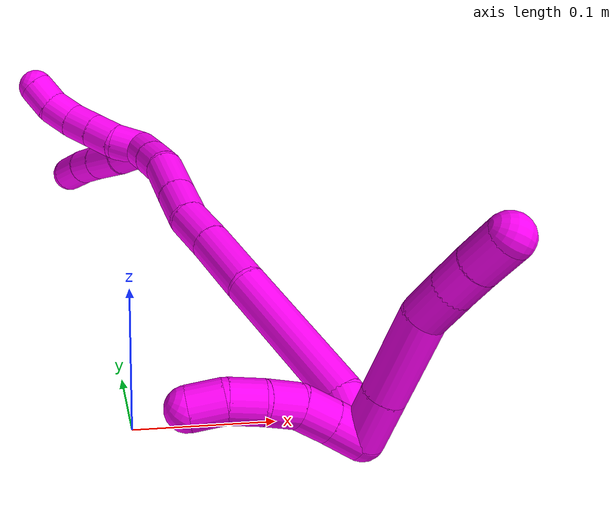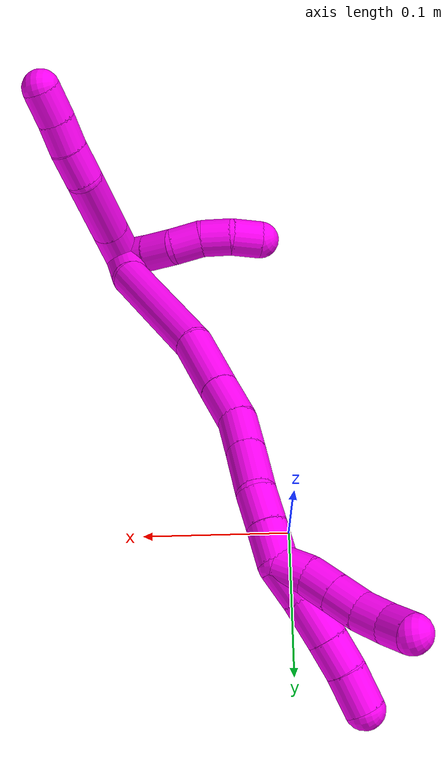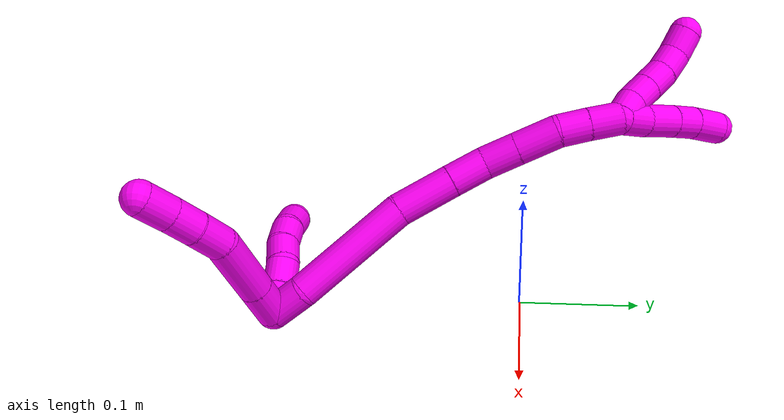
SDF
<sdf version="1.7">
 <world name="default">
  <model name="10">
   <static>0</static>
   <link name="10">
    <collision name="collision-cylinder-e_1_2_8">
     <pose>0.014125 0.005081 0.002437 -1.12356 1.19122 -0.80641</pose>
     <geometry><cylinder><radius>0.0125</radius><length>0.030415</length></cylinder></geometry>
     <surface>
      <friction><ode><mu>1.16</mu><mu2>1.16</mu2><slip1>0</slip1><slip2>0</slip2></ode></friction>
      <contact><ode><kp>1e+06</kp><kd>1</kd><max_vel>0</max_vel><min_depth>0.001</min_depth></ode></contact>
     </surface>
    </collision>
    <visual name="visual-cylinder-e_1_2_8">
     <pose>0.014125 0.005081 0.002437 -1.12356 1.19122 -0.80641</pose>
     <geometry><cylinder><radius>0.0125</radius><length>0.030415</length></cylinder></geometry>
     <material><ambient>1 0 0.964706 1</ambient></material>
    </visual>
    <collision name="collision-cylinder-e_2_8_9">
     <pose>0.051787 0.018562 0.008911 -1.12278 1.19375 -0.807744</pose>
     <geometry><cylinder><radius>0.0125</radius><length>0.05063</length></cylinder></geometry>
     <surface>
      <friction><ode><mu>1.16</mu><mu2>1.16</mu2><slip1>0</slip1><slip2>0</slip2></ode></friction>
      <contact><ode><kp>1e+06</kp><kd>1</kd><max_vel>0</max_vel><min_depth>0.001</min_depth></ode></contact>
     </surface>
    </collision>
    <visual name="visual-cylinder-e_2_8_9">
     <pose>0.051787 0.018562 0.008911 -1.12278 1.19375 -0.807744</pose>
     <geometry><cylinder><radius>0.0125</radius><length>0.05063</length></cylinder></geometry>
     <material><ambient>1 0 0.964706 1</ambient></material>
    </visual>
    <collision name="collision-cylinder-e_3_9_10">
     <pose>0.087415 0.027603 0.012897 -1.65095 1.5177 -1.59791</pose>
     <geometry><cylinder><radius>0.0125</radius><length>0.024218</length></cylinder></geometry>
     <surface>
      <friction><ode><mu>1.16</mu><mu2>1.16</mu2><slip1>0</slip1><slip2>0</slip2></ode></friction>
      <contact><ode><kp>1e+06</kp><kd>1</kd><max_vel>0</max_vel><min_depth>0.001</min_depth></ode></contact>
     </surface>
    </collision>
    <visual name="visual-cylinder-e_3_9_10">
     <pose>0.087415 0.027603 0.012897 -1.65095 1.5177 -1.59791</pose>
     <geometry><cylinder><radius>0.0125</radius><length>0.024218</length></cylinder></geometry>
     <material><ambient>1 0 0.964706 1</ambient></material>
    </visual>
    <collision name="collision-cylinder-e_4_10_11">
     <pose>0.110107 0.027862 0.013229 0.782269 1.51979 0.746948</pose>
     <geometry><cylinder><radius>0.0125</radius><length>0.021227</length></cylinder></geometry>
     <surface>
      <friction><ode><mu>1.16</mu><mu2>1.16</mu2><slip1>0</slip1><slip2>0</slip2></ode></friction>
      <contact><ode><kp>1e+06</kp><kd>1</kd><max_vel>0</max_vel><min_depth>0.001</min_depth></ode></contact>
     </surface>
    </collision>
    <visual name="visual-cylinder-e_4_10_11">
     <pose>0.110107 0.027862 0.013229 0.782269 1.51979 0.746948</pose>
     <geometry><cylinder><radius>0.0125</radius><length>0.021227</length></cylinder></geometry>
     <material><ambient>1 0 0.964706 1</ambient></material>
    </visual>
    <collision name="collision-cylinder-e_5_11_6">
     <pose>0.132459 0.027274 0.013513 2.02346 1.55127 2.00582</pose>
     <geometry><cylinder><radius>0.0125</radius><length>0.023511</length></cylinder></geometry>
     <surface>
      <friction><ode><mu>1.16</mu><mu2>1.16</mu2><slip1>0</slip1><slip2>0</slip2></ode></friction>
      <contact><ode><kp>1e+06</kp><kd>1</kd><max_vel>0</max_vel><min_depth>0.001</min_depth></ode></contact>
     </surface>
    </collision>
    <visual name="visual-cylinder-e_5_11_6">
     <pose>0.132459 0.027274 0.013513 2.02346 1.55127 2.00582</pose>
     <geometry><cylinder><radius>0.0125</radius><length>0.023511</length></cylinder></geometry>
     <material><ambient>1 0 0.964706 1</ambient></material>
    </visual>
    <collision name="collision-cylinder-e_1_2_12">
     <pose>7.2e-05 0.001019 0.009948 -0.102072 0.007209 -0.000368</pose>
     <geometry><cylinder><radius>0.0125</radius><length>0.02</length></cylinder></geometry>
     <surface>
      <friction><ode><mu>1.16</mu><mu2>1.16</mu2><slip1>0</slip1><slip2>0</slip2></ode></friction>
      <contact><ode><kp>1e+06</kp><kd>1</kd><max_vel>0</max_vel><min_depth>0.001</min_depth></ode></contact>
     </surface>
    </collision>
    <visual name="visual-cylinder-e_1_2_12">
     <pose>7.2e-05 0.001019 0.009948 -0.102072 0.007209 -0.000368</pose>
     <geometry><cylinder><radius>0.0125</radius><length>0.02</length></cylinder></geometry>
     <material><ambient>1 0 0.964706 1</ambient></material>
    </visual>
    <collision name="collision-cylinder-e_2_12_13">
     <pose>0.000368 0.002449 0.029884 -0.041167 0.022398 -0.000461</pose>
     <geometry><cylinder><radius>0.0125</radius><length>0.02</length></cylinder></geometry>
     <surface>
      <friction><ode><mu>1.16</mu><mu2>1.16</mu2><slip1>0</slip1><slip2>0</slip2></ode></friction>
      <contact><ode><kp>1e+06</kp><kd>1</kd><max_vel>0</max_vel><min_depth>0.001</min_depth></ode></contact>
     </surface>
    </collision>
    <visual name="visual-cylinder-e_2_12_13">
     <pose>0.000368 0.002449 0.029884 -0.041167 0.022398 -0.000461</pose>
     <geometry><cylinder><radius>0.0125</radius><length>0.02</length></cylinder></geometry>
     <material><ambient>1 0 0.964706 1</ambient></material>
    </visual>
    <collision name="collision-cylinder-e_3_13_14">
     <pose>-0.000217 0.000136 0.049461 0.276901 -0.080951 -0.011286</pose>
     <geometry><cylinder><radius>0.0125</radius><length>0.02</length></cylinder></geometry>
     <surface>
      <friction><ode><mu>1.16</mu><mu2>1.16</mu2><slip1>0</slip1><slip2>0</slip2></ode></friction>
      <contact><ode><kp>1e+06</kp><kd>1</kd><max_vel>0</max_vel><min_depth>0.001</min_depth></ode></contact>
     </surface>
    </collision>
    <visual name="visual-cylinder-e_3_13_14">
     <pose>-0.000217 0.000136 0.049461 0.276901 -0.080951 -0.011286</pose>
     <geometry><cylinder><radius>0.0125</radius><length>0.02</length></cylinder></geometry>
     <material><ambient>1 0 0.964706 1</ambient></material>
    </visual>
    <collision name="collision-cylinder-e_4_14_15">
     <pose>-0.003998 -0.004605 0.068381 0.21277 -0.301829 -0.032476</pose>
     <geometry><cylinder><radius>0.0125</radius><length>0.02</length></cylinder></geometry>
     <surface>
      <friction><ode><mu>1.16</mu><mu2>1.16</mu2><slip1>0</slip1><slip2>0</slip2></ode></friction>
      <contact><ode><kp>1e+06</kp><kd>1</kd><max_vel>0</max_vel><min_depth>0.001</min_depth></ode></contact>
     </surface>
    </collision>
    <visual name="visual-cylinder-e_4_14_15">
     <pose>-0.003998 -0.004605 0.068381 0.21277 -0.301829 -0.032476</pose>
     <geometry><cylinder><radius>0.0125</radius><length>0.02</length></cylinder></geometry>
     <material><ambient>1 0 0.964706 1</ambient></material>
    </visual>
    <collision name="collision-cylinder-e_5_15_5">
     <pose>-0.012137 -0.009774 0.085674 0.377148 -0.542916 -0.106133</pose>
     <geometry><cylinder><radius>0.0125</radius><length>0.02</length></cylinder></geometry>
     <surface>
      <friction><ode><mu>1.16</mu><mu2>1.16</mu2><slip1>0</slip1><slip2>0</slip2></ode></friction>
      <contact><ode><kp>1e+06</kp><kd>1</kd><max_vel>0</max_vel><min_depth>0.001</min_depth></ode></contact>
     </surface>
    </collision>
    <visual name="visual-cylinder-e_5_15_5">
     <pose>-0.012137 -0.009774 0.085674 0.377148 -0.542916 -0.106133</pose>
     <geometry><cylinder><radius>0.0125</radius><length>0.02</length></cylinder></geometry>
     <material><ambient>1 0 0.964706 1</ambient></material>
    </visual>
    <collision name="collision-cylinder-e_1_2_16">
     <pose>-0.001654 0.012532 0.005795 -1.13769 -0.119214 0.076272</pose>
     <geometry><cylinder><radius>0.0125</radius><length>0.027812</length></cylinder></geometry>
     <surface>
      <friction><ode><mu>1.16</mu><mu2>1.16</mu2><slip1>0</slip1><slip2>0</slip2></ode></friction>
      <contact><ode><kp>1e+06</kp><kd>1</kd><max_vel>0</max_vel><min_depth>0.001</min_depth></ode></contact>
     </surface>
    </collision>
    <visual name="visual-cylinder-e_1_2_16">
     <pose>-0.001654 0.012532 0.005795 -1.13769 -0.119214 0.076272</pose>
     <geometry><cylinder><radius>0.0125</radius><length>0.027812</length></cylinder></geometry>
     <material><ambient>1 0 0.964706 1</ambient></material>
    </visual>
    <collision name="collision-cylinder-e_2_16_17">
     <pose>-0.014881 0.058942 0.040146 -0.870423 -0.25549 0.119297</pose>
     <geometry><cylinder><radius>0.0125</radius><length>0.091587</length></cylinder></geometry>
     <surface>
      <friction><ode><mu>1.16</mu><mu2>1.16</mu2><slip1>0</slip1><slip2>0</slip2></ode></friction>
      <contact><ode><kp>1e+06</kp><kd>1</kd><max_vel>0</max_vel><min_depth>0.001</min_depth></ode></contact>
     </surface>
    </collision>
    <visual name="visual-cylinder-e_2_16_17">
     <pose>-0.014881 0.058942 0.040146 -0.870423 -0.25549 0.119297</pose>
     <geometry><cylinder><radius>0.0125</radius><length>0.091587</length></cylinder></geometry>
     <material><ambient>1 0 0.964706 1</ambient></material>
    </visual>
    <collision name="collision-cylinder-e_3_17_18">
     <pose>-0.034668 0.110447 0.079188 -1.03412 -0.380915 0.218397</pose>
     <geometry><cylinder><radius>0.0125</radius><length>0.044189</length></cylinder></geometry>
     <surface>
      <friction><ode><mu>1.16</mu><mu2>1.16</mu2><slip1>0</slip1><slip2>0</slip2></ode></friction>
      <contact><ode><kp>1e+06</kp><kd>1</kd><max_vel>0</max_vel><min_depth>0.001</min_depth></ode></contact>
     </surface>
    </collision>
    <visual name="visual-cylinder-e_3_17_18">
     <pose>-0.034668 0.110447 0.079188 -1.03412 -0.380915 0.218397</pose>
     <geometry><cylinder><radius>0.0125</radius><length>0.044189</length></cylinder></geometry>
     <material><ambient>1 0 0.964706 1</ambient></material>
    </visual>
    <collision name="collision-cylinder-e_4_18_19">
     <pose>-0.048577 0.139242 0.096562 -1.01821 -0.409523 0.23081</pose>
     <geometry><cylinder><radius>0.0125</radius><length>0.028607</length></cylinder></geometry>
     <surface>
      <friction><ode><mu>1.16</mu><mu2>1.16</mu2><slip1>0</slip1><slip2>0</slip2></ode></friction>
      <contact><ode><kp>1e+06</kp><kd>1</kd><max_vel>0</max_vel><min_depth>0.001</min_depth></ode></contact>
     </surface>
    </collision>
    <visual name="visual-cylinder-e_4_18_19">
     <pose>-0.048577 0.139242 0.096562 -1.01821 -0.409523 0.23081</pose>
     <geometry><cylinder><radius>0.0125</radius><length>0.028607</length></cylinder></geometry>
     <material><ambient>1 0 0.964706 1</ambient></material>
    </visual>
    <collision name="collision-cylinder-e_5_19_20">
     <pose>-0.058673 0.162384 0.107632 -1.23475 -0.333968 0.238199</pose>
     <geometry><cylinder><radius>0.0125</radius><length>0.02685</length></cylinder></geometry>
     <surface>
      <friction><ode><mu>1.16</mu><mu2>1.16</mu2><slip1>0</slip1><slip2>0</slip2></ode></friction>
      <contact><ode><kp>1e+06</kp><kd>1</kd><max_vel>0</max_vel><min_depth>0.001</min_depth></ode></contact>
     </surface>
    </collision>
    <visual name="visual-cylinder-e_5_19_20">
     <pose>-0.058673 0.162384 0.107632 -1.23475 -0.333968 0.238199</pose>
     <geometry><cylinder><radius>0.0125</radius><length>0.02685</length></cylinder></geometry>
     <material><ambient>1 0 0.964706 1</ambient></material>
    </visual>
    <collision name="collision-cylinder-e_6_20_21">
     <pose>-0.068301 0.188951 0.116739 -1.24532 -0.3272 0.235926</pose>
     <geometry><cylinder><radius>0.0125</radius><length>0.032531</length></cylinder></geometry>
     <surface>
      <friction><ode><mu>1.16</mu><mu2>1.16</mu2><slip1>0</slip1><slip2>0</slip2></ode></friction>
      <contact><ode><kp>1e+06</kp><kd>1</kd><max_vel>0</max_vel><min_depth>0.001</min_depth></ode></contact>
     </surface>
    </collision>
    <visual name="visual-cylinder-e_6_20_21">
     <pose>-0.068301 0.188951 0.116739 -1.24532 -0.3272 0.235926</pose>
     <geometry><cylinder><radius>0.0125</radius><length>0.032531</length></cylinder></geometry>
     <material><ambient>1 0 0.964706 1</ambient></material>
    </visual>
    <collision name="collision-cylinder-e_7_21_22">
     <pose>-0.080044 0.212594 0.124779 -1.23924 -0.597736 0.432671</pose>
     <geometry><cylinder><radius>0.0125</radius><length>0.023154</length></cylinder></geometry>
     <surface>
      <friction><ode><mu>1.16</mu><mu2>1.16</mu2><slip1>0</slip1><slip2>0</slip2></ode></friction>
      <contact><ode><kp>1e+06</kp><kd>1</kd><max_vel>0</max_vel><min_depth>0.001</min_depth></ode></contact>
     </surface>
    </collision>
    <visual name="visual-cylinder-e_7_21_22">
     <pose>-0.080044 0.212594 0.124779 -1.23924 -0.597736 0.432671</pose>
     <geometry><cylinder><radius>0.0125</radius><length>0.023154</length></cylinder></geometry>
     <material><ambient>1 0 0.964706 1</ambient></material>
    </visual>
    <collision name="collision-cylinder-e_8_22_1">
     <pose>-0.093947 0.231405 0.131019 -1.26106 -0.624554 0.462857</pose>
     <geometry><cylinder><radius>0.0125</radius><length>0.02527</length></cylinder></geometry>
     <surface>
      <friction><ode><mu>1.16</mu><mu2>1.16</mu2><slip1>0</slip1><slip2>0</slip2></ode></friction>
      <contact><ode><kp>1e+06</kp><kd>1</kd><max_vel>0</max_vel><min_depth>0.001</min_depth></ode></contact>
     </surface>
    </collision>
    <visual name="visual-cylinder-e_8_22_1">
     <pose>-0.093947 0.231405 0.131019 -1.26106 -0.624554 0.462857</pose>
     <geometry><cylinder><radius>0.0125</radius><length>0.02527</length></cylinder></geometry>
     <material><ambient>1 0 0.964706 1</ambient></material>
    </visual>
    <collision name="collision-cylinder-e_1_1_23">
     <pose>-0.105418 0.243528 0.142961 -0.261642 -0.420578 0.056152</pose>
     <geometry><cylinder><radius>0.0125</radius><length>0.02</length></cylinder></geometry>
     <surface>
      <friction><ode><mu>1.16</mu><mu2>1.16</mu2><slip1>0</slip1><slip2>0</slip2></ode></friction>
      <contact><ode><kp>1e+06</kp><kd>1</kd><max_vel>0</max_vel><min_depth>0.001</min_depth></ode></contact>
     </surface>
    </collision>
    <visual name="visual-cylinder-e_1_1_23">
     <pose>-0.105418 0.243528 0.142961 -0.261642 -0.420578 0.056152</pose>
     <geometry><cylinder><radius>0.0125</radius><length>0.02</length></cylinder></geometry>
     <material><ambient>1 0 0.964706 1</ambient></material>
    </visual>
    <collision name="collision-cylinder-e_2_23_24">
     <pose>-0.113696 0.250618 0.159527 -0.548023 -0.432882 0.123455</pose>
     <geometry><cylinder><radius>0.0125</radius><length>0.02</length></cylinder></geometry>
     <surface>
      <friction><ode><mu>1.16</mu><mu2>1.16</mu2><slip1>0</slip1><slip2>0</slip2></ode></friction>
      <contact><ode><kp>1e+06</kp><kd>1</kd><max_vel>0</max_vel><min_depth>0.001</min_depth></ode></contact>
     </surface>
    </collision>
    <visual name="visual-cylinder-e_2_23_24">
     <pose>-0.113696 0.250618 0.159527 -0.548023 -0.432882 0.123455</pose>
     <geometry><cylinder><radius>0.0125</radius><length>0.02</length></cylinder></geometry>
     <material><ambient>1 0 0.964706 1</ambient></material>
    </visual>
    <collision name="collision-cylinder-e_3_24_25">
     <pose>-0.122054 0.260164 0.174987 -0.558287 -0.429368 0.124833</pose>
     <geometry><cylinder><radius>0.0125</radius><length>0.02</length></cylinder></geometry>
     <surface>
      <friction><ode><mu>1.16</mu><mu2>1.16</mu2><slip1>0</slip1><slip2>0</slip2></ode></friction>
      <contact><ode><kp>1e+06</kp><kd>1</kd><max_vel>0</max_vel><min_depth>0.001</min_depth></ode></contact>
     </surface>
    </collision>
    <visual name="visual-cylinder-e_3_24_25">
     <pose>-0.122054 0.260164 0.174987 -0.558287 -0.429368 0.124833</pose>
     <geometry><cylinder><radius>0.0125</radius><length>0.02</length></cylinder></geometry>
     <material><ambient>1 0 0.964706 1</ambient></material>
    </visual>
    <collision name="collision-cylinder-e_4_25_26">
     <pose>-0.128624 0.269674 0.191194 -0.504656 -0.243095 0.062965</pose>
     <geometry><cylinder><radius>0.0125</radius><length>0.02</length></cylinder></geometry>
     <surface>
      <friction><ode><mu>1.16</mu><mu2>1.16</mu2><slip1>0</slip1><slip2>0</slip2></ode></friction>
      <contact><ode><kp>1e+06</kp><kd>1</kd><max_vel>0</max_vel><min_depth>0.001</min_depth></ode></contact>
     </surface>
    </collision>
    <visual name="visual-cylinder-e_4_25_26">
     <pose>-0.128624 0.269674 0.191194 -0.504656 -0.243095 0.062965</pose>
     <geometry><cylinder><radius>0.0125</radius><length>0.02</length></cylinder></geometry>
     <material><ambient>1 0 0.964706 1</ambient></material>
    </visual>
    <collision name="collision-cylinder-e_5_26_4">
     <pose>-0.130967 0.280122 0.207868 -0.613278 0.006408 -0.002029</pose>
     <geometry><cylinder><radius>0.0125</radius><length>0.02</length></cylinder></geometry>
     <surface>
      <friction><ode><mu>1.16</mu><mu2>1.16</mu2><slip1>0</slip1><slip2>0</slip2></ode></friction>
      <contact><ode><kp>1e+06</kp><kd>1</kd><max_vel>0</max_vel><min_depth>0.001</min_depth></ode></contact>
     </surface>
    </collision>
    <visual name="visual-cylinder-e_5_26_4">
     <pose>-0.130967 0.280122 0.207868 -0.613278 0.006408 -0.002029</pose>
     <geometry><cylinder><radius>0.0125</radius><length>0.02</length></cylinder></geometry>
     <material><ambient>1 0 0.964706 1</ambient></material>
    </visual>
    <collision name="collision-cylinder-e_1_1_27">
     <pose>-0.112058 0.244473 0.138194 -0.684595 -1.11707 0.438194</pose>
     <geometry><cylinder><radius>0.0125</radius><length>0.02386</length></cylinder></geometry>
     <surface>
      <friction><ode><mu>1.16</mu><mu2>1.16</mu2><slip1>0</slip1><slip2>0</slip2></ode></friction>
      <contact><ode><kp>1e+06</kp><kd>1</kd><max_vel>0</max_vel><min_depth>0.001</min_depth></ode></contact>
     </surface>
    </collision>
    <visual name="visual-cylinder-e_1_1_27">
     <pose>-0.112058 0.244473 0.138194 -0.684595 -1.11707 0.438194</pose>
     <geometry><cylinder><radius>0.0125</radius><length>0.02386</length></cylinder></geometry>
     <material><ambient>1 0 0.964706 1</ambient></material>
    </visual>
    <collision name="collision-cylinder-e_2_27_28">
     <pose>-0.135061 0.25336 0.146957 -0.869537 -1.0342 0.516438</pose>
     <geometry><cylinder><radius>0.0125</radius><length>0.028576</length></cylinder></geometry>
     <surface>
      <friction><ode><mu>1.16</mu><mu2>1.16</mu2><slip1>0</slip1><slip2>0</slip2></ode></friction>
      <contact><ode><kp>1e+06</kp><kd>1</kd><max_vel>0</max_vel><min_depth>0.001</min_depth></ode></contact>
     </surface>
    </collision>
    <visual name="visual-cylinder-e_2_27_28">
     <pose>-0.135061 0.25336 0.146957 -0.869537 -1.0342 0.516438</pose>
     <geometry><cylinder><radius>0.0125</radius><length>0.028576</length></cylinder></geometry>
     <material><ambient>1 0 0.964706 1</ambient></material>
    </visual>
    <collision name="collision-cylinder-e_3_28_29">
     <pose>-0.156796 0.263082 0.154945 -0.901563 -1.06157 0.553626</pose>
     <geometry><cylinder><radius>0.0125</radius><length>0.021659</length></cylinder></geometry>
     <surface>
      <friction><ode><mu>1.16</mu><mu2>1.16</mu2><slip1>0</slip1><slip2>0</slip2></ode></friction>
      <contact><ode><kp>1e+06</kp><kd>1</kd><max_vel>0</max_vel><min_depth>0.001</min_depth></ode></contact>
     </surface>
    </collision>
    <visual name="visual-cylinder-e_3_28_29">
     <pose>-0.156796 0.263082 0.154945 -0.901563 -1.06157 0.553626</pose>
     <geometry><cylinder><radius>0.0125</radius><length>0.021659</length></cylinder></geometry>
     <material><ambient>1 0 0.964706 1</ambient></material>
    </visual>
    <collision name="collision-cylinder-e_4_29_3">
     <pose>-0.177996 0.271994 0.16088 -1.06222 -1.13542 0.71686</pose>
     <geometry><cylinder><radius>0.0125</radius><length>0.025906</length></cylinder></geometry>
     <surface>
      <friction><ode><mu>1.16</mu><mu2>1.16</mu2><slip1>0</slip1><slip2>0</slip2></ode></friction>
      <contact><ode><kp>1e+06</kp><kd>1</kd><max_vel>0</max_vel><min_depth>0.001</min_depth></ode></contact>
     </surface>
    </collision>
    <visual name="visual-cylinder-e_4_29_3">
     <pose>-0.177996 0.271994 0.16088 -1.06222 -1.13542 0.71686</pose>
     <geometry><cylinder><radius>0.0125</radius><length>0.025906</length></cylinder></geometry>
     <material><ambient>1 0 0.964706 1</ambient></material>
    </visual>
    <collision name="collision-sphere-3">
     <pose>-0.18974 0.276765 0.16354 0 -0 0</pose>
     <geometry><sphere><radius>0.0125</radius></sphere></geometry>
     <surface>
      <friction><ode><mu>1.16</mu><mu2>1.16</mu2><slip1>0</slip1><slip2>0</slip2></ode></friction>
      <contact><ode><kp>1e+06</kp><kd>1</kd><max_vel>0</max_vel><min_depth>0.001</min_depth></ode></contact>
     </surface>
    </collision>
    <visual name="visual-sphere-3">
     <pose>-0.18974 0.276765 0.16354 0 -0 0</pose>
     <geometry><sphere><radius>0.0125</radius></sphere></geometry>
     <material><ambient>1 0 0.964706 1</ambient></material>
    </visual>
    <collision name="collision-sphere-29">
     <pose>-0.166251 0.267222 0.15822 0 -0 0</pose>
     <geometry><sphere><radius>0.0125</radius></sphere></geometry>
     <surface>
      <friction><ode><mu>1.16</mu><mu2>1.16</mu2><slip1>0</slip1><slip2>0</slip2></ode></friction>
      <contact><ode><kp>1e+06</kp><kd>1</kd><max_vel>0</max_vel><min_depth>0.001</min_depth></ode></contact>
     </surface>
    </collision>
    <visual name="visual-sphere-29">
     <pose>-0.166251 0.267222 0.15822 0 -0 0</pose>
     <geometry><sphere><radius>0.0125</radius></sphere></geometry>
     <material><ambient>1 0 0.964706 1</ambient></material>
    </visual>
    <collision name="collision-sphere-28">
     <pose>-0.147341 0.258941 0.151669 0 -0 0</pose>
     <geometry><sphere><radius>0.0125</radius></sphere></geometry>
     <surface>
      <friction><ode><mu>1.16</mu><mu2>1.16</mu2><slip1>0</slip1><slip2>0</slip2></ode></friction>
      <contact><ode><kp>1e+06</kp><kd>1</kd><max_vel>0</max_vel><min_depth>0.001</min_depth></ode></contact>
     </surface>
    </collision>
    <visual name="visual-sphere-28">
     <pose>-0.147341 0.258941 0.151669 0 -0 0</pose>
     <geometry><sphere><radius>0.0125</radius></sphere></geometry>
     <material><ambient>1 0 0.964706 1</ambient></material>
    </visual>
    <collision name="collision-sphere-27">
     <pose>-0.122781 0.24778 0.142244 0 -0 0</pose>
     <geometry><sphere><radius>0.0125</radius></sphere></geometry>
     <surface>
      <friction><ode><mu>1.16</mu><mu2>1.16</mu2><slip1>0</slip1><slip2>0</slip2></ode></friction>
      <contact><ode><kp>1e+06</kp><kd>1</kd><max_vel>0</max_vel><min_depth>0.001</min_depth></ode></contact>
     </surface>
    </collision>
    <visual name="visual-sphere-27">
     <pose>-0.122781 0.24778 0.142244 0 -0 0</pose>
     <geometry><sphere><radius>0.0125</radius></sphere></geometry>
     <material><ambient>1 0 0.964706 1</ambient></material>
    </visual>
    <collision name="collision-sphere-4">
     <pose>-0.130903 0.285877 0.216045 0 -0 0</pose>
     <geometry><sphere><radius>0.0125</radius></sphere></geometry>
     <surface>
      <friction><ode><mu>1.16</mu><mu2>1.16</mu2><slip1>0</slip1><slip2>0</slip2></ode></friction>
      <contact><ode><kp>1e+06</kp><kd>1</kd><max_vel>0</max_vel><min_depth>0.001</min_depth></ode></contact>
     </surface>
    </collision>
    <visual name="visual-sphere-4">
     <pose>-0.130903 0.285877 0.216045 0 -0 0</pose>
     <geometry><sphere><radius>0.0125</radius></sphere></geometry>
     <material><ambient>1 0 0.964706 1</ambient></material>
    </visual>
    <collision name="collision-sphere-26">
     <pose>-0.131031 0.274367 0.19969 0 -0 0</pose>
     <geometry><sphere><radius>0.0125</radius></sphere></geometry>
     <surface>
      <friction><ode><mu>1.16</mu><mu2>1.16</mu2><slip1>0</slip1><slip2>0</slip2></ode></friction>
      <contact><ode><kp>1e+06</kp><kd>1</kd><max_vel>0</max_vel><min_depth>0.001</min_depth></ode></contact>
     </surface>
    </collision>
    <visual name="visual-sphere-26">
     <pose>-0.131031 0.274367 0.19969 0 -0 0</pose>
     <geometry><sphere><radius>0.0125</radius></sphere></geometry>
     <material><ambient>1 0 0.964706 1</ambient></material>
    </visual>
    <collision name="collision-sphere-25">
     <pose>-0.126217 0.264981 0.182698 0 -0 0</pose>
     <geometry><sphere><radius>0.0125</radius></sphere></geometry>
     <surface>
      <friction><ode><mu>1.16</mu><mu2>1.16</mu2><slip1>0</slip1><slip2>0</slip2></ode></friction>
      <contact><ode><kp>1e+06</kp><kd>1</kd><max_vel>0</max_vel><min_depth>0.001</min_depth></ode></contact>
     </surface>
    </collision>
    <visual name="visual-sphere-25">
     <pose>-0.126217 0.264981 0.182698 0 -0 0</pose>
     <geometry><sphere><radius>0.0125</radius></sphere></geometry>
     <material><ambient>1 0 0.964706 1</ambient></material>
    </visual>
    <collision name="collision-sphere-24">
     <pose>-0.117891 0.255348 0.167275 0 -0 0</pose>
     <geometry><sphere><radius>0.0125</radius></sphere></geometry>
     <surface>
      <friction><ode><mu>1.16</mu><mu2>1.16</mu2><slip1>0</slip1><slip2>0</slip2></ode></friction>
      <contact><ode><kp>1e+06</kp><kd>1</kd><max_vel>0</max_vel><min_depth>0.001</min_depth></ode></contact>
     </surface>
    </collision>
    <visual name="visual-sphere-24">
     <pose>-0.117891 0.255348 0.167275 0 -0 0</pose>
     <geometry><sphere><radius>0.0125</radius></sphere></geometry>
     <material><ambient>1 0 0.964706 1</ambient></material>
    </visual>
    <collision name="collision-sphere-23">
     <pose>-0.109501 0.245889 0.151778 0 -0 0</pose>
     <geometry><sphere><radius>0.0125</radius></sphere></geometry>
     <surface>
      <friction><ode><mu>1.16</mu><mu2>1.16</mu2><slip1>0</slip1><slip2>0</slip2></ode></friction>
      <contact><ode><kp>1e+06</kp><kd>1</kd><max_vel>0</max_vel><min_depth>0.001</min_depth></ode></contact>
     </surface>
    </collision>
    <visual name="visual-sphere-23">
     <pose>-0.109501 0.245889 0.151778 0 -0 0</pose>
     <geometry><sphere><radius>0.0125</radius></sphere></geometry>
     <material><ambient>1 0 0.964706 1</ambient></material>
    </visual>
    <collision name="collision-sphere-1">
     <pose>-0.101335 0.241167 0.134143 0 -0 0</pose>
     <geometry><sphere><radius>0.0125</radius></sphere></geometry>
     <surface>
      <friction><ode><mu>1.16</mu><mu2>1.16</mu2><slip1>0</slip1><slip2>0</slip2></ode></friction>
      <contact><ode><kp>1e+06</kp><kd>1</kd><max_vel>0</max_vel><min_depth>0.001</min_depth></ode></contact>
     </surface>
    </collision>
    <visual name="visual-sphere-1">
     <pose>-0.101335 0.241167 0.134143 0 -0 0</pose>
     <geometry><sphere><radius>0.0125</radius></sphere></geometry>
     <material><ambient>1 0 0.964706 1</ambient></material>
    </visual>
    <collision name="collision-sphere-22">
     <pose>-0.086559 0.221643 0.127894 0 -0 0</pose>
     <geometry><sphere><radius>0.0125</radius></sphere></geometry>
     <surface>
      <friction><ode><mu>1.16</mu><mu2>1.16</mu2><slip1>0</slip1><slip2>0</slip2></ode></friction>
      <contact><ode><kp>1e+06</kp><kd>1</kd><max_vel>0</max_vel><min_depth>0.001</min_depth></ode></contact>
     </surface>
    </collision>
    <visual name="visual-sphere-22">
     <pose>-0.086559 0.221643 0.127894 0 -0 0</pose>
     <geometry><sphere><radius>0.0125</radius></sphere></geometry>
     <material><ambient>1 0 0.964706 1</ambient></material>
    </visual>
    <collision name="collision-sphere-21">
     <pose>-0.073529 0.203545 0.121664 0 -0 0</pose>
     <geometry><sphere><radius>0.0125</radius></sphere></geometry>
     <surface>
      <friction><ode><mu>1.16</mu><mu2>1.16</mu2><slip1>0</slip1><slip2>0</slip2></ode></friction>
      <contact><ode><kp>1e+06</kp><kd>1</kd><max_vel>0</max_vel><min_depth>0.001</min_depth></ode></contact>
     </surface>
    </collision>
    <visual name="visual-sphere-21">
     <pose>-0.073529 0.203545 0.121664 0 -0 0</pose>
     <geometry><sphere><radius>0.0125</radius></sphere></geometry>
     <material><ambient>1 0 0.964706 1</ambient></material>
    </visual>
    <collision name="collision-sphere-6">
     <pose>0.144212 0.027068 0.013412 0 -0 0</pose>
     <geometry><sphere><radius>0.0125</radius></sphere></geometry>
     <surface>
      <friction><ode><mu>1.16</mu><mu2>1.16</mu2><slip1>0</slip1><slip2>0</slip2></ode></friction>
      <contact><ode><kp>1e+06</kp><kd>1</kd><max_vel>0</max_vel><min_depth>0.001</min_depth></ode></contact>
     </surface>
    </collision>
    <visual name="visual-sphere-6">
     <pose>0.144212 0.027068 0.013412 0 -0 0</pose>
     <geometry><sphere><radius>0.0125</radius></sphere></geometry>
     <material><ambient>1 0 0.964706 1</ambient></material>
    </visual>
    <collision name="collision-sphere-11">
     <pose>0.120706 0.02748 0.013613 0 -0 0</pose>
     <geometry><sphere><radius>0.0125</radius></sphere></geometry>
     <surface>
      <friction><ode><mu>1.16</mu><mu2>1.16</mu2><slip1>0</slip1><slip2>0</slip2></ode></friction>
      <contact><ode><kp>1e+06</kp><kd>1</kd><max_vel>0</max_vel><min_depth>0.001</min_depth></ode></contact>
     </surface>
    </collision>
    <visual name="visual-sphere-11">
     <pose>0.120706 0.02748 0.013613 0 -0 0</pose>
     <geometry><sphere><radius>0.0125</radius></sphere></geometry>
     <material><ambient>1 0 0.964706 1</ambient></material>
    </visual>
    <collision name="collision-sphere-10">
     <pose>0.099507 0.028243 0.012846 0 -0 0</pose>
     <geometry><sphere><radius>0.0125</radius></sphere></geometry>
     <surface>
      <friction><ode><mu>1.16</mu><mu2>1.16</mu2><slip1>0</slip1><slip2>0</slip2></ode></friction>
      <contact><ode><kp>1e+06</kp><kd>1</kd><max_vel>0</max_vel><min_depth>0.001</min_depth></ode></contact>
     </surface>
    </collision>
    <visual name="visual-sphere-10">
     <pose>0.099507 0.028243 0.012846 0 -0 0</pose>
     <geometry><sphere><radius>0.0125</radius></sphere></geometry>
     <material><ambient>1 0 0.964706 1</ambient></material>
    </visual>
    <collision name="collision-sphere-9">
     <pose>0.075323 0.026962 0.012949 0 -0 0</pose>
     <geometry><sphere><radius>0.0125</radius></sphere></geometry>
     <surface>
      <friction><ode><mu>1.16</mu><mu2>1.16</mu2><slip1>0</slip1><slip2>0</slip2></ode></friction>
      <contact><ode><kp>1e+06</kp><kd>1</kd><max_vel>0</max_vel><min_depth>0.001</min_depth></ode></contact>
     </surface>
    </collision>
    <visual name="visual-sphere-9">
     <pose>0.075323 0.026962 0.012949 0 -0 0</pose>
     <geometry><sphere><radius>0.0125</radius></sphere></geometry>
     <material><ambient>1 0 0.964706 1</ambient></material>
    </visual>
    <collision name="collision-sphere-2">
     <geometry><sphere><radius>0.0125</radius></sphere></geometry>
     <surface>
      <friction><ode><mu>1.16</mu><mu2>1.16</mu2><slip1>0</slip1><slip2>0</slip2></ode></friction>
      <contact><ode><kp>1e+06</kp><kd>1</kd><max_vel>0</max_vel><min_depth>0.001</min_depth></ode></contact>
     </surface>
    </collision>
    <visual name="visual-sphere-2">
     <geometry><sphere><radius>0.0125</radius></sphere></geometry>
     <material><ambient>1 0 0.964706 1</ambient></material>
    </visual>
    <collision name="collision-sphere-19">
     <pose>-0.054272 0.15041 0.103449 0 -0 0</pose>
     <geometry><sphere><radius>0.0125</radius></sphere></geometry>
     <surface>
      <friction><ode><mu>1.16</mu><mu2>1.16</mu2><slip1>0</slip1><slip2>0</slip2></ode></friction>
      <contact><ode><kp>1e+06</kp><kd>1</kd><max_vel>0</max_vel><min_depth>0.001</min_depth></ode></contact>
     </surface>
    </collision>
    <visual name="visual-sphere-19">
     <pose>-0.054272 0.15041 0.103449 0 -0 0</pose>
     <geometry><sphere><radius>0.0125</radius></sphere></geometry>
     <material><ambient>1 0 0.964706 1</ambient></material>
    </visual>
    <collision name="collision-sphere-8">
     <pose>0.02825 0.010161 0.004874 0 -0 0</pose>
     <geometry><sphere><radius>0.0125</radius></sphere></geometry>
     <surface>
      <friction><ode><mu>1.16</mu><mu2>1.16</mu2><slip1>0</slip1><slip2>0</slip2></ode></friction>
      <contact><ode><kp>1e+06</kp><kd>1</kd><max_vel>0</max_vel><min_depth>0.001</min_depth></ode></contact>
     </surface>
    </collision>
    <visual name="visual-sphere-8">
     <pose>0.02825 0.010161 0.004874 0 -0 0</pose>
     <geometry><sphere><radius>0.0125</radius></sphere></geometry>
     <material><ambient>1 0 0.964706 1</ambient></material>
    </visual>
    <collision name="collision-sphere-12">
     <pose>0.000144 0.002038 0.019895 0 -0 0</pose>
     <geometry><sphere><radius>0.0125</radius></sphere></geometry>
     <surface>
      <friction><ode><mu>1.16</mu><mu2>1.16</mu2><slip1>0</slip1><slip2>0</slip2></ode></friction>
      <contact><ode><kp>1e+06</kp><kd>1</kd><max_vel>0</max_vel><min_depth>0.001</min_depth></ode></contact>
     </surface>
    </collision>
    <visual name="visual-sphere-12">
     <pose>0.000144 0.002038 0.019895 0 -0 0</pose>
     <geometry><sphere><radius>0.0125</radius></sphere></geometry>
     <material><ambient>1 0 0.964706 1</ambient></material>
    </visual>
    <collision name="collision-sphere-13">
     <pose>0.000592 0.002861 0.039873 0 -0 0</pose>
     <geometry><sphere><radius>0.0125</radius></sphere></geometry>
     <surface>
      <friction><ode><mu>1.16</mu><mu2>1.16</mu2><slip1>0</slip1><slip2>0</slip2></ode></friction>
      <contact><ode><kp>1e+06</kp><kd>1</kd><max_vel>0</max_vel><min_depth>0.001</min_depth></ode></contact>
     </surface>
    </collision>
    <visual name="visual-sphere-13">
     <pose>0.000592 0.002861 0.039873 0 -0 0</pose>
     <geometry><sphere><radius>0.0125</radius></sphere></geometry>
     <material><ambient>1 0 0.964706 1</ambient></material>
    </visual>
    <collision name="collision-sphere-14">
     <pose>-0.001025 -0.002589 0.059049 0 -0 0</pose>
     <geometry><sphere><radius>0.0125</radius></sphere></geometry>
     <surface>
      <friction><ode><mu>1.16</mu><mu2>1.16</mu2><slip1>0</slip1><slip2>0</slip2></ode></friction>
      <contact><ode><kp>1e+06</kp><kd>1</kd><max_vel>0</max_vel><min_depth>0.001</min_depth></ode></contact>
     </surface>
    </collision>
    <visual name="visual-sphere-14">
     <pose>-0.001025 -0.002589 0.059049 0 -0 0</pose>
     <geometry><sphere><radius>0.0125</radius></sphere></geometry>
     <material><ambient>1 0 0.964706 1</ambient></material>
    </visual>
    <collision name="collision-sphere-15">
     <pose>-0.00697 -0.006621 0.077714 0 -0 0</pose>
     <geometry><sphere><radius>0.0125</radius></sphere></geometry>
     <surface>
      <friction><ode><mu>1.16</mu><mu2>1.16</mu2><slip1>0</slip1><slip2>0</slip2></ode></friction>
      <contact><ode><kp>1e+06</kp><kd>1</kd><max_vel>0</max_vel><min_depth>0.001</min_depth></ode></contact>
     </surface>
    </collision>
    <visual name="visual-sphere-15">
     <pose>-0.00697 -0.006621 0.077714 0 -0 0</pose>
     <geometry><sphere><radius>0.0125</radius></sphere></geometry>
     <material><ambient>1 0 0.964706 1</ambient></material>
    </visual>
    <collision name="collision-sphere-5">
     <pose>-0.017303 -0.012928 0.093634 0 -0 0</pose>
     <geometry><sphere><radius>0.0125</radius></sphere></geometry>
     <surface>
      <friction><ode><mu>1.16</mu><mu2>1.16</mu2><slip1>0</slip1><slip2>0</slip2></ode></friction>
      <contact><ode><kp>1e+06</kp><kd>1</kd><max_vel>0</max_vel><min_depth>0.001</min_depth></ode></contact>
     </surface>
    </collision>
    <visual name="visual-sphere-5">
     <pose>-0.017303 -0.012928 0.093634 0 -0 0</pose>
     <geometry><sphere><radius>0.0125</radius></sphere></geometry>
     <material><ambient>1 0 0.964706 1</ambient></material>
    </visual>
    <collision name="collision-sphere-16">
     <pose>-0.003308 0.025065 0.01159 0 -0 0</pose>
     <geometry><sphere><radius>0.0125</radius></sphere></geometry>
     <surface>
      <friction><ode><mu>1.16</mu><mu2>1.16</mu2><slip1>0</slip1><slip2>0</slip2></ode></friction>
      <contact><ode><kp>1e+06</kp><kd>1</kd><max_vel>0</max_vel><min_depth>0.001</min_depth></ode></contact>
     </surface>
    </collision>
    <visual name="visual-sphere-16">
     <pose>-0.003308 0.025065 0.01159 0 -0 0</pose>
     <geometry><sphere><radius>0.0125</radius></sphere></geometry>
     <material><ambient>1 0 0.964706 1</ambient></material>
    </visual>
    <collision name="collision-sphere-17">
     <pose>-0.026454 0.092819 0.068701 0 -0 0</pose>
     <geometry><sphere><radius>0.0125</radius></sphere></geometry>
     <surface>
      <friction><ode><mu>1.16</mu><mu2>1.16</mu2><slip1>0</slip1><slip2>0</slip2></ode></friction>
      <contact><ode><kp>1e+06</kp><kd>1</kd><max_vel>0</max_vel><min_depth>0.001</min_depth></ode></contact>
     </surface>
    </collision>
    <visual name="visual-sphere-17">
     <pose>-0.026454 0.092819 0.068701 0 -0 0</pose>
     <geometry><sphere><radius>0.0125</radius></sphere></geometry>
     <material><ambient>1 0 0.964706 1</ambient></material>
    </visual>
    <collision name="collision-sphere-18">
     <pose>-0.042882 0.128074 0.089676 0 -0 0</pose>
     <geometry><sphere><radius>0.0125</radius></sphere></geometry>
     <surface>
      <friction><ode><mu>1.16</mu><mu2>1.16</mu2><slip1>0</slip1><slip2>0</slip2></ode></friction>
      <contact><ode><kp>1e+06</kp><kd>1</kd><max_vel>0</max_vel><min_depth>0.001</min_depth></ode></contact>
     </surface>
    </collision>
    <visual name="visual-sphere-18">
     <pose>-0.042882 0.128074 0.089676 0 -0 0</pose>
     <geometry><sphere><radius>0.0125</radius></sphere></geometry>
     <material><ambient>1 0 0.964706 1</ambient></material>
    </visual>
    <collision name="collision-sphere-20">
     <pose>-0.063073 0.174358 0.111814 0 -0 0</pose>
     <geometry><sphere><radius>0.0125</radius></sphere></geometry>
     <surface>
      <friction><ode><mu>1.16</mu><mu2>1.16</mu2><slip1>0</slip1><slip2>0</slip2></ode></friction>
      <contact><ode><kp>1e+06</kp><kd>1</kd><max_vel>0</max_vel><min_depth>0.001</min_depth></ode></contact>
     </surface>
    </collision>
    <visual name="visual-sphere-20">
     <pose>-0.063073 0.174358 0.111814 0 -0 0</pose>
     <geometry><sphere><radius>0.0125</radius></sphere></geometry>
     <material><ambient>1 0 0.964706 1</ambient></material>
    </visual>
    <inertial>
     <pose>-0.038145 0.120756 0.082455 0 -0 0</pose>
     <mass>0.75</mass>
     <inertia>
      <ixx>0.000114</ixx>
      <ixy>0</ixy>
      <ixz>0</ixz>
      <iyy>0.000138</iyy>
      <iyz>0</iyz>
      <izz>-3.8e-05</izz>
     </inertia>
    </inertial>
   </link>
   <pose>0.108731 -0.181806 0.063316 0.882624 -0.788985 -1.02991</pose>
  </model>
 </world>
</sdf>
